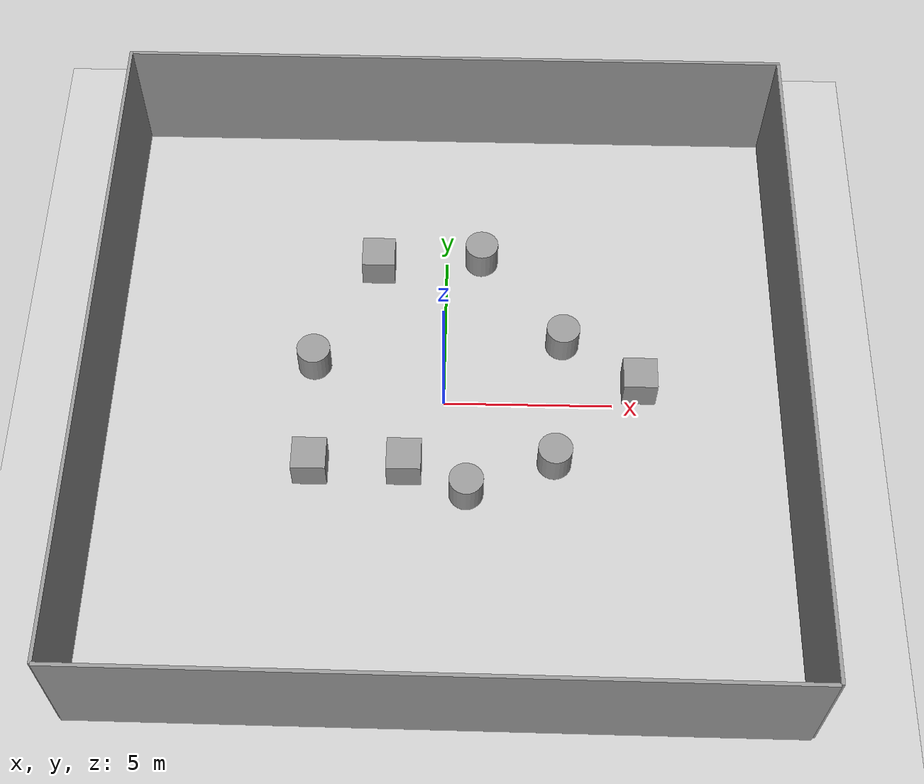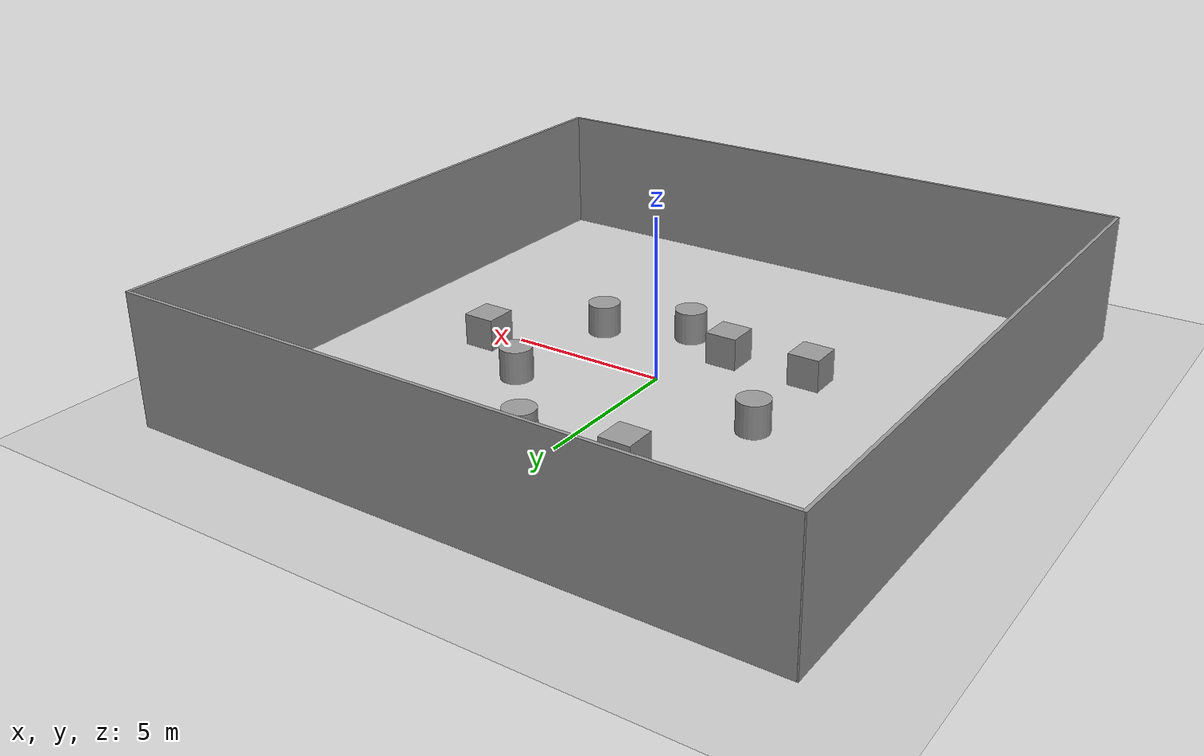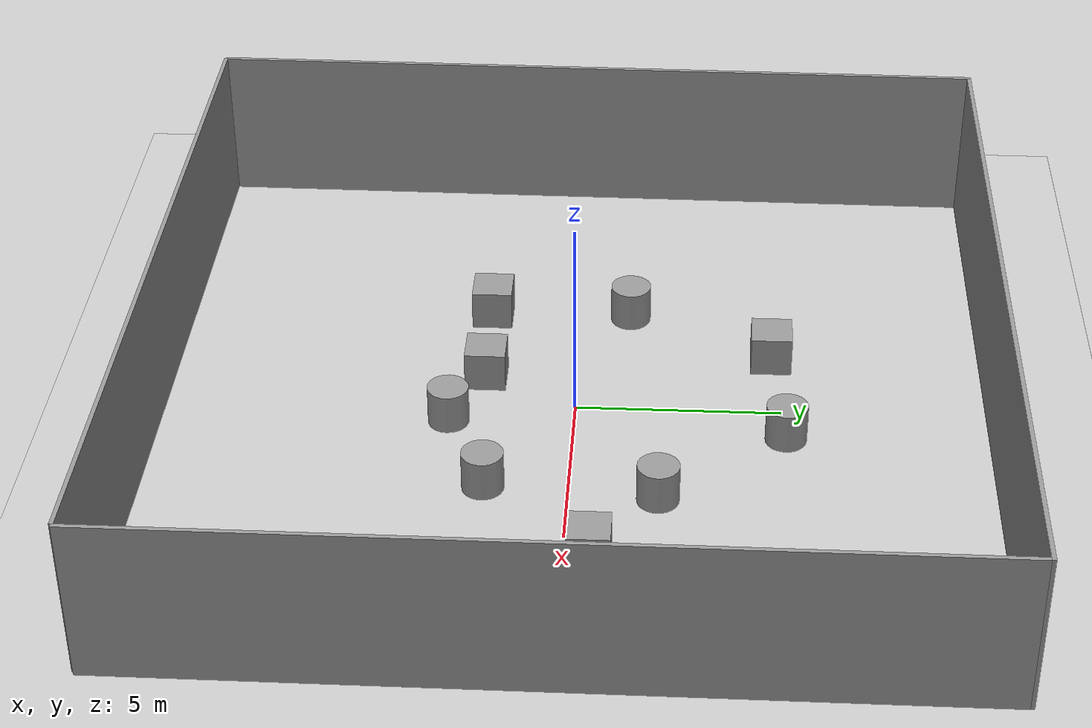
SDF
<sdf version="1.6">
 <world name="default">
  <light name="sun" type="directional">
   <pose>0 0 10 0 -0 0</pose>
   <diffuse>0.8 0.8 0.8 1</diffuse>
   <specular>0.1 0.1 0.1 1</specular>
   <attenuation>
    <range>1000</range>
    <constant>0.9</constant>
    <linear>0.01</linear>
    <quadratic>0.001</quadratic>
   </attenuation>
   <direction>-0.5 0.5 -1</direction>
  </light>
  <model name="ground_plane">
   <static>1</static>
   <link name="link">
    <collision name="collision">
     <geometry><plane><normal>0 0 1</normal><size>100 100</size></plane></geometry>
     <surface><friction><ode><mu>100</mu><mu2>100</mu2></ode></friction></surface>
    </collision>
    <visual name="visual">
     <cast_shadows>0</cast_shadows>
     <geometry><plane><normal>0 0 1</normal><size>100 100</size></plane></geometry>
     <material>
      <script><uri>file://media/materials/scripts/gazebo.material</uri><name>Gazebo/Grey</name></script>
     </material>
    </visual>
   </link>
  </model>
  <gravity>0 0 -9.81</gravity>
  <magnetic_field>6e-06 2.3e-05 -4.2e-05</magnetic_field>
  <atmosphere type="adiabatic"/>
  <physics name="default_physics" default="0" type="ode">
   <max_step_size>0.001</max_step_size>
   <real_time_factor>1</real_time_factor>
   <real_time_update_rate>1000</real_time_update_rate>
   <ode>
    <solver>
     <type>quick</type>
     <iters>1000</iters>
     <sor>1.3</sor>
     <use_dynamic_moi_rescaling>0</use_dynamic_moi_rescaling>
    </solver>
    <constraints>
     <cfm>0</cfm>
     <erp>0.2</erp>
     <contact_max_correcting_vel>100</contact_max_correcting_vel>
     <contact_surface_layer>0.001</contact_surface_layer>
    </constraints>
   </ode>
  </physics>
  <scene><ambient>0.4 0.4 0.4 1</ambient><background>0.7 0.7 0.7 1</background><shadows>1</shadows></scene>
  <spherical_coordinates>
   <surface_model>EARTH_WGS84</surface_model>
   <latitude_deg>0</latitude_deg>
   <longitude_deg>0</longitude_deg>
   <elevation>0</elevation>
   <heading_deg>0</heading_deg>
  </spherical_coordinates>
  <model name="only_walls">
   <link name="link">
    <inertial>
     <mass>1</mass>
     <inertia>
      <ixx>0.166667</ixx>
      <ixy>0</ixy>
      <ixz>0</ixz>
      <iyy>0.166667</iyy>
      <iyz>0</iyz>
      <izz>0.166667</izz>
     </inertia>
    </inertial>
    <visual name="visual">
     <geometry><box><size>20 0.1 4</size></box></geometry>
     <material>
      <script><name>Gazebo/Grey</name><uri>file://media/materials/scripts/gazebo.material</uri></script>
      <ambient>0.3 0.3 0.3 1</ambient>
      <diffuse>0.7 0.7 0.7 1</diffuse>
      <specular>0.01 0.01 0.01 1</specular>
      <emissive>0 0 0 1</emissive>
      <shader type="vertex"><normal_map>__default__</normal_map></shader>
     </material>
     <pose>0 0 2 0 -0 0</pose>
    </visual>
    <collision name="collision">
     <pose>0 0 2 0 -0 0</pose>
     <geometry><box><size>20 0.1 4</size></box></geometry>
     <surface>
      <friction>
       <ode><mu>1</mu><mu2>1</mu2><fdir1>0 0 0</fdir1><slip1>0</slip1><slip2>0</slip2></ode>
       <torsional>
        <coefficient>1</coefficient>
        <patch_radius>0</patch_radius>
        <surface_radius>0</surface_radius>
        <use_patch_radius>1</use_patch_radius>
        <ode><slip>0</slip></ode>
       </torsional>
      </friction>
      <bounce><restitution_coefficient>0</restitution_coefficient><threshold>1e+06</threshold></bounce>
      <contact>
       <collide_without_contact>0</collide_without_contact>
       <collide_without_contact_bitmask>1</collide_without_contact_bitmask>
       <collide_bitmask>1</collide_bitmask>
       <ode>
        <soft_cfm>0</soft_cfm>
        <soft_erp>0.2</soft_erp>
        <kp>1e+13</kp>
        <kd>1</kd>
        <max_vel>0.01</max_vel>
        <min_depth>0</min_depth>
       </ode>
       <bullet>
        <split_impulse>1</split_impulse>
        <split_impulse_penetration_threshold>-0.01</split_impulse_penetration_threshold>
        <soft_cfm>0</soft_cfm>
        <soft_erp>0.2</soft_erp>
        <kp>1e+13</kp>
        <kd>1</kd>
       </bullet>
      </contact>
     </surface>
    </collision>
   </link>
   <link name="link_clone">
    <pose>-0 20 -0 -4e-06 -1e-05 0.004611</pose>
    <inertial>
     <mass>1</mass>
     <inertia>
      <ixx>0.166667</ixx>
      <ixy>0</ixy>
      <ixz>0</ixz>
      <iyy>0.166667</iyy>
      <iyz>0</iyz>
      <izz>0.166667</izz>
     </inertia>
    </inertial>
    <visual name="visual">
     <geometry><box><size>20 0.1 4</size></box></geometry>
     <material>
      <script><name>Gazebo/Grey</name><uri>file://media/materials/scripts/gazebo.material</uri></script>
      <ambient>0.3 0.3 0.3 1</ambient>
      <diffuse>0.7 0.7 0.7 1</diffuse>
      <specular>0.01 0.01 0.01 1</specular>
      <emissive>0 0 0 1</emissive>
      <shader type="vertex"><normal_map>__default__</normal_map></shader>
     </material>
     <pose>0 0 2 0 -0 0</pose>
    </visual>
    <collision name="collision">
     <pose>0 0 2 0 -0 0</pose>
     <geometry><box><size>20 0.1 4</size></box></geometry>
     <surface>
      <friction>
       <ode><mu>1</mu><mu2>1</mu2><fdir1>0 0 0</fdir1><slip1>0</slip1><slip2>0</slip2></ode>
       <torsional>
        <coefficient>1</coefficient>
        <patch_radius>0</patch_radius>
        <surface_radius>0</surface_radius>
        <use_patch_radius>1</use_patch_radius>
        <ode><slip>0</slip></ode>
       </torsional>
      </friction>
      <bounce><restitution_coefficient>0</restitution_coefficient><threshold>1e+06</threshold></bounce>
      <contact>
       <collide_without_contact>0</collide_without_contact>
       <collide_without_contact_bitmask>1</collide_without_contact_bitmask>
       <collide_bitmask>1</collide_bitmask>
       <ode>
        <soft_cfm>0</soft_cfm>
        <soft_erp>0.2</soft_erp>
        <kp>1e+13</kp>
        <kd>1</kd>
        <max_vel>0.01</max_vel>
        <min_depth>0</min_depth>
       </ode>
       <bullet>
        <split_impulse>1</split_impulse>
        <split_impulse_penetration_threshold>-0.01</split_impulse_penetration_threshold>
        <soft_cfm>0</soft_cfm>
        <soft_erp>0.2</soft_erp>
        <kp>1e+13</kp>
        <kd>1</kd>
       </bullet>
      </contact>
     </surface>
    </collision>
   </link>
   <link name="link_clone_0">
    <pose>-10 10 -0 -4e-06 -1e-05 1.57</pose>
    <inertial>
     <mass>1</mass>
     <inertia>
      <ixx>0.166667</ixx>
      <ixy>0</ixy>
      <ixz>0</ixz>
      <iyy>0.166667</iyy>
      <iyz>0</iyz>
      <izz>0.166667</izz>
     </inertia>
    </inertial>
    <visual name="visual">
     <geometry><box><size>20 0.1 4</size></box></geometry>
     <material>
      <script><name>Gazebo/Grey</name><uri>file://media/materials/scripts/gazebo.material</uri></script>
      <ambient>0.3 0.3 0.3 1</ambient>
      <diffuse>0.7 0.7 0.7 1</diffuse>
      <specular>0.01 0.01 0.01 1</specular>
      <emissive>0 0 0 1</emissive>
      <shader type="vertex"><normal_map>__default__</normal_map></shader>
     </material>
     <pose>0 0 2 0 -0 0</pose>
    </visual>
    <collision name="collision">
     <pose>0 0 2 0 -0 0</pose>
     <geometry><box><size>20 0.1 4</size></box></geometry>
     <surface>
      <friction>
       <ode><mu>1</mu><mu2>1</mu2><fdir1>0 0 0</fdir1><slip1>0</slip1><slip2>0</slip2></ode>
       <torsional>
        <coefficient>1</coefficient>
        <patch_radius>0</patch_radius>
        <surface_radius>0</surface_radius>
        <use_patch_radius>1</use_patch_radius>
        <ode><slip>0</slip></ode>
       </torsional>
      </friction>
      <bounce><restitution_coefficient>0</restitution_coefficient><threshold>1e+06</threshold></bounce>
      <contact>
       <collide_without_contact>0</collide_without_contact>
       <collide_without_contact_bitmask>1</collide_without_contact_bitmask>
       <collide_bitmask>1</collide_bitmask>
       <ode>
        <soft_cfm>0</soft_cfm>
        <soft_erp>0.2</soft_erp>
        <kp>1e+13</kp>
        <kd>1</kd>
        <max_vel>0.01</max_vel>
        <min_depth>0</min_depth>
       </ode>
       <bullet>
        <split_impulse>1</split_impulse>
        <split_impulse_penetration_threshold>-0.01</split_impulse_penetration_threshold>
        <soft_cfm>0</soft_cfm>
        <soft_erp>0.2</soft_erp>
        <kp>1e+13</kp>
        <kd>1</kd>
       </bullet>
      </contact>
     </surface>
    </collision>
   </link>
   <link name="link_clone_0_clone">
    <pose>10 10 -5.5e-05 -1.4e-05 -6e-06 1.57461</pose>
    <inertial>
     <mass>1</mass>
     <inertia>
      <ixx>0.166667</ixx>
      <ixy>0</ixy>
      <ixz>0</ixz>
      <iyy>0.166667</iyy>
      <iyz>0</iyz>
      <izz>0.166667</izz>
     </inertia>
    </inertial>
    <visual name="visual">
     <geometry><box><size>20 0.1 4</size></box></geometry>
     <material>
      <script><name>Gazebo/Grey</name><uri>file://media/materials/scripts/gazebo.material</uri></script>
      <ambient>0.3 0.3 0.3 1</ambient>
      <diffuse>0.7 0.7 0.7 1</diffuse>
      <specular>0.01 0.01 0.01 1</specular>
      <emissive>0 0 0 1</emissive>
      <shader type="vertex"><normal_map>__default__</normal_map></shader>
     </material>
     <pose>0 0 2 0 -0 0</pose>
    </visual>
    <collision name="collision">
     <pose>0 0 2 0 -0 0</pose>
     <geometry><box><size>20 0.1 4</size></box></geometry>
     <surface>
      <friction>
       <ode><mu>1</mu><mu2>1</mu2><fdir1>0 0 0</fdir1><slip1>0</slip1><slip2>0</slip2></ode>
       <torsional>
        <coefficient>1</coefficient>
        <patch_radius>0</patch_radius>
        <surface_radius>0</surface_radius>
        <use_patch_radius>1</use_patch_radius>
        <ode><slip>0</slip></ode>
       </torsional>
      </friction>
      <bounce><restitution_coefficient>0</restitution_coefficient><threshold>1e+06</threshold></bounce>
      <contact>
       <collide_without_contact>0</collide_without_contact>
       <collide_without_contact_bitmask>1</collide_without_contact_bitmask>
       <collide_bitmask>1</collide_bitmask>
       <ode>
        <soft_cfm>0</soft_cfm>
        <soft_erp>0.2</soft_erp>
        <kp>1e+13</kp>
        <kd>1</kd>
        <max_vel>0.01</max_vel>
        <min_depth>0</min_depth>
       </ode>
       <bullet>
        <split_impulse>1</split_impulse>
        <split_impulse_penetration_threshold>-0.01</split_impulse_penetration_threshold>
        <soft_cfm>0</soft_cfm>
        <soft_erp>0.2</soft_erp>
        <kp>1e+13</kp>
        <kd>1</kd>
       </bullet>
      </contact>
     </surface>
    </collision>
   </link>
   <static>1</static>
   <pose>9.6e-05 -10.0045 -0.000102 4e-06 1e-05 -0.004611</pose>
  </model>
  <model name="unit_cylinder">
   <pose>3.25139 -1.97808 0.5 0 -0 0</pose>
   <link name="link">
    <inertial>
     <mass>1</mass>
     <inertia><ixx>0.145833</ixx><ixy>0</ixy><ixz>0</ixz><iyy>0.145833</iyy><iyz>0</iyz><izz>0.125</izz></inertia>
    </inertial>
    <collision name="collision">
     <geometry><cylinder><radius>0.5</radius><length>1</length></cylinder></geometry>
    </collision>
    <visual name="visual">
     <geometry><cylinder><radius>0.5</radius><length>1</length></cylinder></geometry>
     <material>
      <script><name>Gazebo/Grey</name><uri>file://media/materials/scripts/gazebo.material</uri></script>
     </material>
    </visual>
   </link>
  </model>
  <model name="unit_cylinder_0">
   <pose>3.53196 2.09729 0.5 0 -0 0</pose>
   <link name="link">
    <inertial>
     <mass>1</mass>
     <inertia><ixx>0.145833</ixx><ixy>0</ixy><ixz>0</ixz><iyy>0.145833</iyy><iyz>0</iyz><izz>0.125</izz></inertia>
    </inertial>
    <collision name="collision">
     <geometry><cylinder><radius>0.5</radius><length>1</length></cylinder></geometry>
    </collision>
    <visual name="visual">
     <geometry><cylinder><radius>0.5</radius><length>1</length></cylinder></geometry>
     <material>
      <script><name>Gazebo/Grey</name><uri>file://media/materials/scripts/gazebo.material</uri></script>
     </material>
    </visual>
   </link>
  </model>
  <model name="unit_box">
   <pose>5.77885 0.60473 0.5 0 -0 0</pose>
   <link name="link">
    <inertial>
     <mass>1</mass>
     <inertia>
      <ixx>0.166667</ixx>
      <ixy>0</ixy>
      <ixz>0</ixz>
      <iyy>0.166667</iyy>
      <iyz>0</iyz>
      <izz>0.166667</izz>
     </inertia>
    </inertial>
    <collision name="collision"><geometry><box><size>1 1 1</size></box></geometry></collision>
    <visual name="visual">
     <geometry><box><size>1 1 1</size></box></geometry>
     <material>
      <script><name>Gazebo/Grey</name><uri>file://media/materials/scripts/gazebo.material</uri></script>
     </material>
    </visual>
   </link>
  </model>
  <model name="unit_cylinder_1">
   <pose>1.05706 5.0955 0.5 0 -0 0</pose>
   <link name="link">
    <inertial>
     <mass>1</mass>
     <inertia><ixx>0.145833</ixx><ixy>0</ixy><ixz>0</ixz><iyy>0.145833</iyy><iyz>0</iyz><izz>0.125</izz></inertia>
    </inertial>
    <collision name="collision">
     <geometry><cylinder><radius>0.5</radius><length>1</length></cylinder></geometry>
    </collision>
    <visual name="visual">
     <geometry><cylinder><radius>0.5</radius><length>1</length></cylinder></geometry>
     <material>
      <script><name>Gazebo/Grey</name><uri>file://media/materials/scripts/gazebo.material</uri></script>
     </material>
    </visual>
   </link>
  </model>
  <model name="unit_box_0">
   <pose>-2.11667 4.77769 0.5 0 -0 0</pose>
   <link name="link">
    <inertial>
     <mass>1</mass>
     <inertia>
      <ixx>0.166667</ixx>
      <ixy>0</ixy>
      <ixz>0</ixz>
      <iyy>0.166667</iyy>
      <iyz>0</iyz>
      <izz>0.166667</izz>
     </inertia>
    </inertial>
    <collision name="collision"><geometry><box><size>1 1 1</size></box></geometry></collision>
    <visual name="visual">
     <geometry><box><size>1 1 1</size></box></geometry>
     <material>
      <script><name>Gazebo/Grey</name><uri>file://media/materials/scripts/gazebo.material</uri></script>
     </material>
    </visual>
   </link>
  </model>
  <model name="unit_box_1">
   <pose>-3.82421 -2.282 0.5 0 -0 0</pose>
   <link name="link">
    <inertial>
     <mass>1</mass>
     <inertia>
      <ixx>0.166667</ixx>
      <ixy>0</ixy>
      <ixz>0</ixz>
      <iyy>0.166667</iyy>
      <iyz>0</iyz>
      <izz>0.166667</izz>
     </inertia>
    </inertial>
    <collision name="collision"><geometry><box><size>1 1 1</size></box></geometry></collision>
    <visual name="visual">
     <geometry><box><size>1 1 1</size></box></geometry>
     <material>
      <script><name>Gazebo/Grey</name><uri>file://media/materials/scripts/gazebo.material</uri></script>
     </material>
    </visual>
   </link>
  </model>
  <model name="unit_cylinder_2">
   <pose>-3.90964 1.23386 0.5 0 -0 0</pose>
   <link name="link">
    <inertial>
     <mass>1</mass>
     <inertia><ixx>0.145833</ixx><ixy>0</ixy><ixz>0</ixz><iyy>0.145833</iyy><iyz>0</iyz><izz>0.125</izz></inertia>
    </inertial>
    <collision name="collision">
     <geometry><cylinder><radius>0.5</radius><length>1</length></cylinder></geometry>
    </collision>
    <visual name="visual">
     <geometry><cylinder><radius>0.5</radius><length>1</length></cylinder></geometry>
     <material>
      <script><name>Gazebo/Grey</name><uri>file://media/materials/scripts/gazebo.material</uri></script>
     </material>
    </visual>
   </link>
  </model>
  <model name="unit_box_2">
   <pose>-1.10147 -2.2419 0.5 0 -0 0</pose>
   <link name="link">
    <inertial>
     <mass>1</mass>
     <inertia>
      <ixx>0.166667</ixx>
      <ixy>0</ixy>
      <ixz>0</ixz>
      <iyy>0.166667</iyy>
      <iyz>0</iyz>
      <izz>0.166667</izz>
     </inertia>
    </inertial>
    <collision name="collision"><geometry><box><size>1 1 1</size></box></geometry></collision>
    <visual name="visual">
     <geometry><box><size>1 1 1</size></box></geometry>
     <material>
      <script><name>Gazebo/Grey</name><uri>file://media/materials/scripts/gazebo.material</uri></script>
     </material>
    </visual>
   </link>
  </model>
  <model name="unit_cylinder_3">
   <pose>0.703487 -3.01451 0.5 0 -0 0</pose>
   <link name="link">
    <inertial>
     <mass>1</mass>
     <inertia><ixx>0.145833</ixx><ixy>0</ixy><ixz>0</ixz><iyy>0.145833</iyy><iyz>0</iyz><izz>0.125</izz></inertia>
    </inertial>
    <collision name="collision">
     <geometry><cylinder><radius>0.5</radius><length>1</length></cylinder></geometry>
    </collision>
    <visual name="visual">
     <geometry><cylinder><radius>0.5</radius><length>1</length></cylinder></geometry>
     <material>
      <script><name>Gazebo/Grey</name><uri>file://media/materials/scripts/gazebo.material</uri></script>
     </material>
    </visual>
   </link>
  </model>
 </world>
</sdf>
